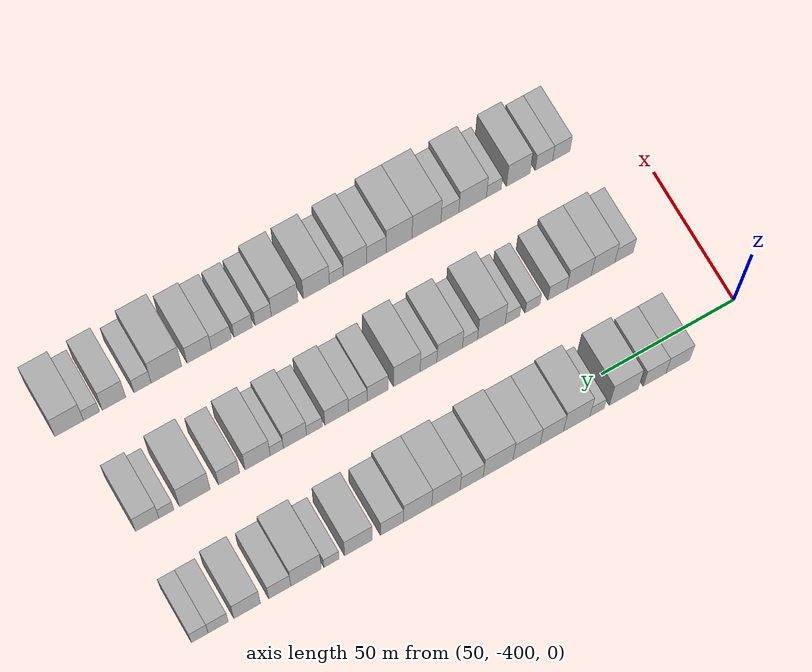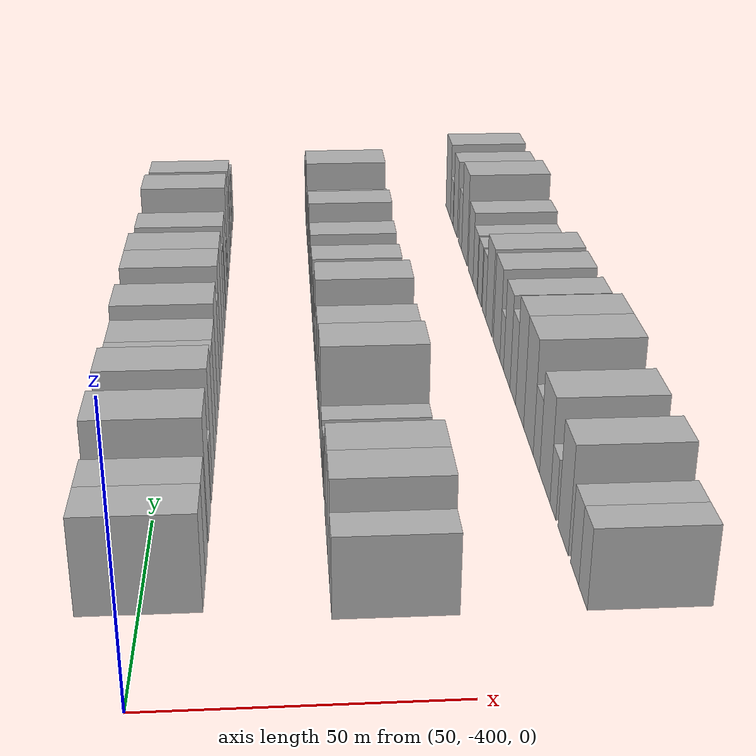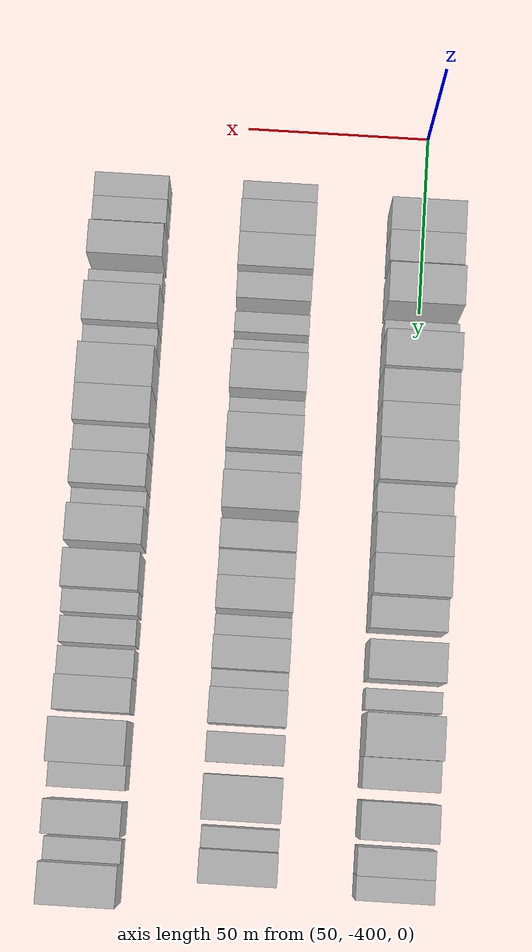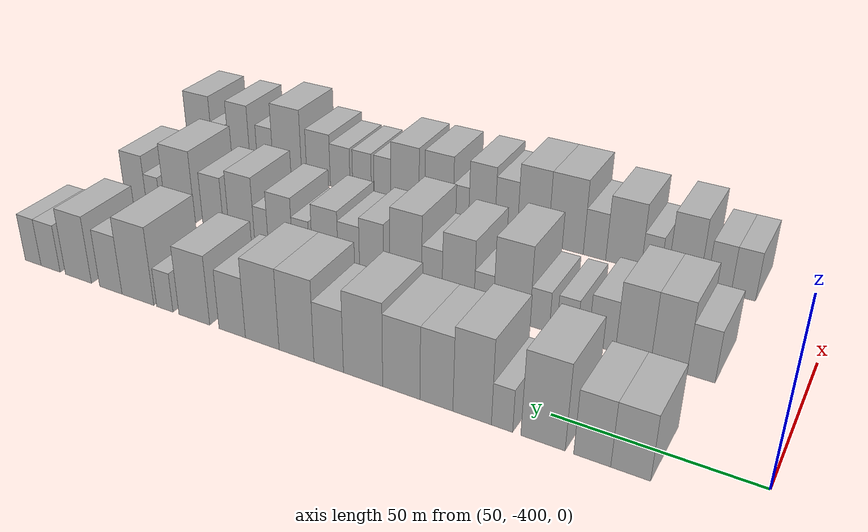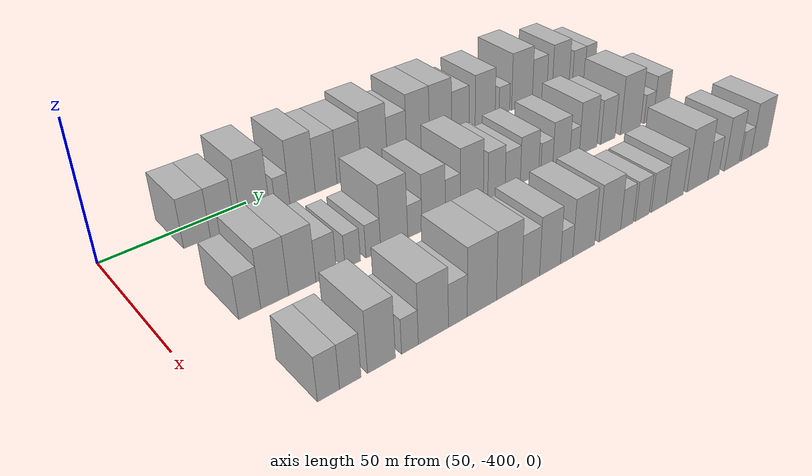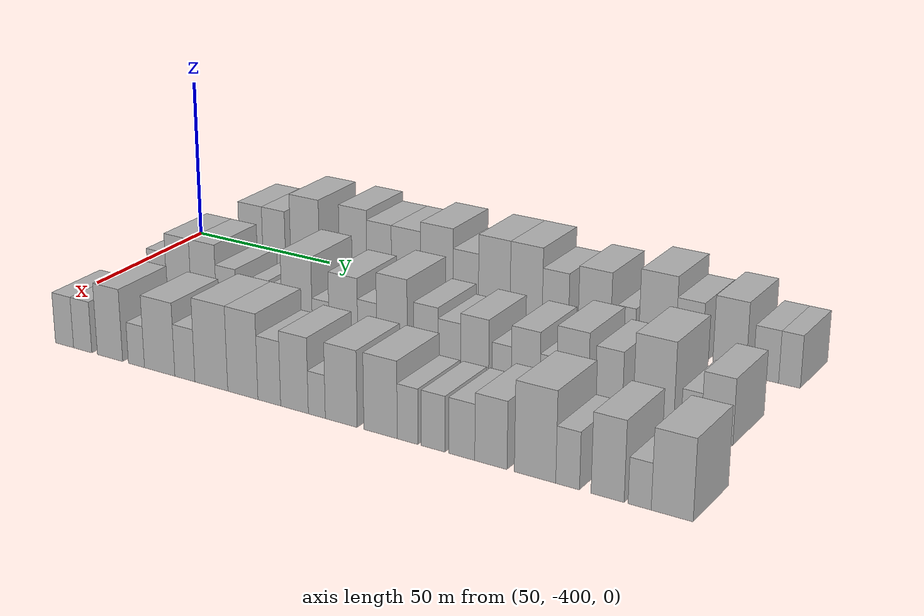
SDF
<sdf version="1.6">
 <world name="default">
  <model name="building_1">
   <static>1</static>
   <pose>50.0000 -372.5119 0 0.000000 0.000000 0.000000</pose>
   <link name="link">
    <pose>0 0 9.00 0 0 0</pose>
    <collision name="collision"><geometry><box><size>20.0000 8.9763 18.0000</size></box></geometry></collision>
    <visual name="visual">
     <cast_shadows>0</cast_shadows>
     <geometry><box><size>20.0000 8.9763 18.0000</size></box></geometry>
     <material>
      <script>
       <uri>model://HANNAS_wall/materials/scripts</uri>
       <uri>model://HANNAS_wall/materials/textures</uri>
       <name>vrc/HANNAS_wall</name>
      </script>
     </material>
    </visual>
   </link>
  </model>
  <model name="building_2">
   <static>1</static>
   <pose>50.0000 -363.7410 0 0.000000 0.000000 0.000000</pose>
   <link name="link">
    <pose>0 0 9.00 0 0 0</pose>
    <collision name="collision"><geometry><box><size>20.0000 8.5655 18.0000</size></box></geometry></collision>
    <visual name="visual">
     <cast_shadows>0</cast_shadows>
     <geometry><box><size>20.0000 8.5655 18.0000</size></box></geometry>
     <material>
      <script>
       <uri>model://HANNAS_wall/materials/scripts</uri>
       <uri>model://HANNAS_wall/materials/textures</uri>
       <name>vrc/HANNAS_wall</name>
      </script>
     </material>
    </visual>
   </link>
  </model>
  <model name="building_3">
   <static>1</static>
   <pose>50.0000 -352.1159 0 0.000000 0.000000 0.000000</pose>
   <link name="link">
    <pose>0 0 12.00 0 0 0</pose>
    <collision name="collision"><geometry><box><size>20.0000 10.6847 24.0000</size></box></geometry></collision>
    <visual name="visual">
     <cast_shadows>0</cast_shadows>
     <geometry><box><size>20.0000 10.6847 24.0000</size></box></geometry>
     <material>
      <script>
       <uri>model://HANNAS_wall/materials/scripts</uri>
       <uri>model://HANNAS_wall/materials/textures</uri>
       <name>vrc/HANNAS_wall</name>
      </script>
     </material>
    </visual>
   </link>
  </model>
  <model name="building_4">
   <static>1</static>
   <pose>50.0000 -342.1169 0 0.000000 0.000000 0.000000</pose>
   <link name="link">
    <pose>0 0 6.00 0 0 0</pose>
    <collision name="collision"><geometry><box><size>20.0000 5.3132 12.0000</size></box></geometry></collision>
    <visual name="visual">
     <cast_shadows>0</cast_shadows>
     <geometry><box><size>20.0000 5.3132 12.0000</size></box></geometry>
     <material>
      <script>
       <uri>model://HANNAS_wall/materials/scripts</uri>
       <uri>model://HANNAS_wall/materials/textures</uri>
       <name>vrc/HANNAS_wall</name>
      </script>
     </material>
    </visual>
   </link>
  </model>
  <model name="building_5">
   <static>1</static>
   <pose>50.0000 -334.5347 0 0.000000 0.000000 0.000000</pose>
   <link name="link">
    <pose>0 0 12.00 0 0 0</pose>
    <collision name="collision"><geometry><box><size>20.0000 9.8513 24.0000</size></box></geometry></collision>
    <visual name="visual">
     <cast_shadows>0</cast_shadows>
     <geometry><box><size>20.0000 9.8513 24.0000</size></box></geometry>
     <material>
      <script>
       <uri>model://HANNAS_wall/materials/scripts</uri>
       <uri>model://HANNAS_wall/materials/textures</uri>
       <name>vrc/HANNAS_wall</name>
      </script>
     </material>
    </visual>
   </link>
  </model>
  <model name="building_6">
   <static>1</static>
   <pose>50.0000 -325.2550 0 0.000000 0.000000 0.000000</pose>
   <link name="link">
    <pose>0 0 10.50 0 0 0</pose>
    <collision name="collision"><geometry><box><size>20.0000 8.7081 21.0000</size></box></geometry></collision>
    <visual name="visual">
     <cast_shadows>0</cast_shadows>
     <geometry><box><size>20.0000 8.7081 21.0000</size></box></geometry>
     <material>
      <script>
       <uri>model://HANNAS_wall/materials/scripts</uri>
       <uri>model://HANNAS_wall/materials/textures</uri>
       <name>vrc/HANNAS_wall</name>
      </script>
     </material>
    </visual>
   </link>
  </model>
  <model name="building_7">
   <static>1</static>
   <pose>50.0000 -315.8533 0 0.000000 0.000000 0.000000</pose>
   <link name="link">
    <pose>0 0 10.50 0 0 0</pose>
    <collision name="collision"><geometry><box><size>20.0000 10.0951 21.0000</size></box></geometry></collision>
    <visual name="visual">
     <cast_shadows>0</cast_shadows>
     <geometry><box><size>20.0000 10.0951 21.0000</size></box></geometry>
     <material>
      <script>
       <uri>model://HANNAS_wall/materials/scripts</uri>
       <uri>model://HANNAS_wall/materials/textures</uri>
       <name>vrc/HANNAS_wall</name>
      </script>
     </material>
    </visual>
   </link>
  </model>
  <model name="building_8">
   <static>1</static>
   <pose>50.0000 -305.2932 0 0.000000 0.000000 0.000000</pose>
   <link name="link">
    <pose>0 0 12.00 0 0 0</pose>
    <collision name="collision"><geometry><box><size>20.0000 11.0251 24.0000</size></box></geometry></collision>
    <visual name="visual">
     <cast_shadows>0</cast_shadows>
     <geometry><box><size>20.0000 11.0251 24.0000</size></box></geometry>
     <material>
      <script>
       <uri>model://HANNAS_wall/materials/scripts</uri>
       <uri>model://HANNAS_wall/materials/textures</uri>
       <name>vrc/HANNAS_wall</name>
      </script>
     </material>
    </visual>
   </link>
  </model>
  <model name="building_9">
   <static>1</static>
   <pose>50.0000 -295.5040 0 0.000000 0.000000 0.000000</pose>
   <link name="link">
    <pose>0 0 9.00 0 0 0</pose>
    <collision name="collision"><geometry><box><size>20.0000 8.5534 18.0000</size></box></geometry></collision>
    <visual name="visual">
     <cast_shadows>0</cast_shadows>
     <geometry><box><size>20.0000 8.5534 18.0000</size></box></geometry>
     <material>
      <script>
       <uri>model://HANNAS_wall/materials/scripts</uri>
       <uri>model://HANNAS_wall/materials/textures</uri>
       <name>vrc/HANNAS_wall</name>
      </script>
     </material>
    </visual>
   </link>
  </model>
  <model name="building_10">
   <static>1</static>
   <pose>50.0000 -286.0187 0 0.000000 0.000000 0.000000</pose>
   <link name="link">
    <pose>0 0 12.00 0 0 0</pose>
    <collision name="collision"><geometry><box><size>20.0000 10.4171 24.0000</size></box></geometry></collision>
    <visual name="visual">
     <cast_shadows>0</cast_shadows>
     <geometry><box><size>20.0000 10.4171 24.0000</size></box></geometry>
     <material>
      <script>
       <uri>model://HANNAS_wall/materials/scripts</uri>
       <uri>model://HANNAS_wall/materials/textures</uri>
       <name>vrc/HANNAS_wall</name>
      </script>
     </material>
    </visual>
   </link>
  </model>
  <model name="building_11">
   <static>1</static>
   <pose>50.0000 -275.6110 0 0.000000 0.000000 0.000000</pose>
   <link name="link">
    <pose>0 0 12.00 0 0 0</pose>
    <collision name="collision"><geometry><box><size>20.0000 10.3982 24.0000</size></box></geometry></collision>
    <visual name="visual">
     <cast_shadows>0</cast_shadows>
     <geometry><box><size>20.0000 10.3982 24.0000</size></box></geometry>
     <material>
      <script>
       <uri>model://HANNAS_wall/materials/scripts</uri>
       <uri>model://HANNAS_wall/materials/textures</uri>
       <name>vrc/HANNAS_wall</name>
      </script>
     </material>
    </visual>
   </link>
  </model>
  <model name="building_12">
   <static>1</static>
   <pose>50.0000 -266.2202 0 0.000000 0.000000 0.000000</pose>
   <link name="link">
    <pose>0 0 9.00 0 0 0</pose>
    <collision name="collision"><geometry><box><size>20.0000 8.3834 18.0000</size></box></geometry></collision>
    <visual name="visual">
     <cast_shadows>0</cast_shadows>
     <geometry><box><size>20.0000 8.3834 18.0000</size></box></geometry>
     <material>
      <script>
       <uri>model://HANNAS_wall/materials/scripts</uri>
       <uri>model://HANNAS_wall/materials/textures</uri>
       <name>vrc/HANNAS_wall</name>
      </script>
     </material>
    </visual>
   </link>
  </model>
  <model name="building_13">
   <static>1</static>
   <pose>50.0000 -253.9671 0 0.000000 0.000000 0.000000</pose>
   <link name="link">
    <pose>0 0 10.50 0 0 0</pose>
    <collision name="collision"><geometry><box><size>20.0000 10.1227 21.0000</size></box></geometry></collision>
    <visual name="visual">
     <cast_shadows>0</cast_shadows>
     <geometry><box><size>20.0000 10.1227 21.0000</size></box></geometry>
     <material>
      <script>
       <uri>model://HANNAS_wall/materials/scripts</uri>
       <uri>model://HANNAS_wall/materials/textures</uri>
       <name>vrc/HANNAS_wall</name>
      </script>
     </material>
    </visual>
   </link>
  </model>
  <model name="building_14">
   <static>1</static>
   <pose>50.0000 -244.1444 0 0.000000 0.000000 0.000000</pose>
   <link name="link">
    <pose>0 0 6.00 0 0 0</pose>
    <collision name="collision"><geometry><box><size>20.0000 5.5228 12.0000</size></box></geometry></collision>
    <visual name="visual">
     <cast_shadows>0</cast_shadows>
     <geometry><box><size>20.0000 5.5228 12.0000</size></box></geometry>
     <material>
      <script>
       <uri>model://HANNAS_wall/materials/scripts</uri>
       <uri>model://HANNAS_wall/materials/textures</uri>
       <name>vrc/HANNAS_wall</name>
      </script>
     </material>
    </visual>
   </link>
  </model>
  <model name="building_15">
   <static>1</static>
   <pose>50.0000 -234.8598 0 0.000000 0.000000 0.000000</pose>
   <link name="link">
    <pose>0 0 12.00 0 0 0</pose>
    <collision name="collision"><geometry><box><size>20.0000 11.0464 24.0000</size></box></geometry></collision>
    <visual name="visual">
     <cast_shadows>0</cast_shadows>
     <geometry><box><size>20.0000 11.0464 24.0000</size></box></geometry>
     <material>
      <script>
       <uri>model://HANNAS_wall/materials/scripts</uri>
       <uri>model://HANNAS_wall/materials/textures</uri>
       <name>vrc/HANNAS_wall</name>
      </script>
     </material>
    </visual>
   </link>
  </model>
  <model name="building_16">
   <static>1</static>
   <pose>50.0000 -225.3460 0 0.000000 0.000000 0.000000</pose>
   <link name="link">
    <pose>0 0 9.00 0 0 0</pose>
    <collision name="collision"><geometry><box><size>20.0000 7.9812 18.0000</size></box></geometry></collision>
    <visual name="visual">
     <cast_shadows>0</cast_shadows>
     <geometry><box><size>20.0000 7.9812 18.0000</size></box></geometry>
     <material>
      <script>
       <uri>model://HANNAS_wall/materials/scripts</uri>
       <uri>model://HANNAS_wall/materials/textures</uri>
       <name>vrc/HANNAS_wall</name>
      </script>
     </material>
    </visual>
   </link>
  </model>
  <model name="building_17">
   <static>1</static>
   <pose>50.0000 -213.5502 0 0.000000 0.000000 0.000000</pose>
   <link name="link">
    <pose>0 0 10.50 0 0 0</pose>
    <collision name="collision"><geometry><box><size>20.0000 9.6105 21.0000</size></box></geometry></collision>
    <visual name="visual">
     <cast_shadows>0</cast_shadows>
     <geometry><box><size>20.0000 9.6105 21.0000</size></box></geometry>
     <material>
      <script>
       <uri>model://HANNAS_wall/materials/scripts</uri>
       <uri>model://HANNAS_wall/materials/textures</uri>
       <name>vrc/HANNAS_wall</name>
      </script>
     </material>
    </visual>
   </link>
  </model>
  <model name="building_18">
   <static>1</static>
   <pose>50.0000 -203.1293 0 0.000000 0.000000 0.000000</pose>
   <link name="link">
    <pose>0 0 7.50 0 0 0</pose>
    <collision name="collision"><geometry><box><size>20.0000 7.2313 15.0000</size></box></geometry></collision>
    <visual name="visual">
     <cast_shadows>0</cast_shadows>
     <geometry><box><size>20.0000 7.2313 15.0000</size></box></geometry>
     <material>
      <script>
       <uri>model://HANNAS_wall/materials/scripts</uri>
       <uri>model://HANNAS_wall/materials/textures</uri>
       <name>vrc/HANNAS_wall</name>
      </script>
     </material>
    </visual>
   </link>
  </model>
  <model name="building_19">
   <static>1</static>
   <pose>50.0000 -196.4776 0 0.000000 0.000000 0.000000</pose>
   <link name="link">
    <pose>0 0 7.50 0 0 0</pose>
    <collision name="collision"><geometry><box><size>20.0000 6.0720 15.0000</size></box></geometry></collision>
    <visual name="visual">
     <cast_shadows>0</cast_shadows>
     <geometry><box><size>20.0000 6.0720 15.0000</size></box></geometry>
     <material>
      <script>
       <uri>model://HANNAS_wall/materials/scripts</uri>
       <uri>model://HANNAS_wall/materials/textures</uri>
       <name>vrc/HANNAS_wall</name>
      </script>
     </material>
    </visual>
   </link>
  </model>
  <model name="building_85">
   <static>1</static>
   <pose>90.0000 -376.5354 0 0.000000 0.000000 0.000000</pose>
   <link name="link">
    <pose>0 0 7.50 0 0 0</pose>
    <collision name="collision"><geometry><box><size>20.0000 6.9292 15.0000</size></box></geometry></collision>
    <visual name="visual">
     <cast_shadows>0</cast_shadows>
     <geometry><box><size>20.0000 6.9292 15.0000</size></box></geometry>
     <material>
      <script>
       <uri>model://HANNAS_wall/materials/scripts</uri>
       <uri>model://HANNAS_wall/materials/textures</uri>
       <name>vrc/HANNAS_wall</name>
      </script>
     </material>
    </visual>
   </link>
  </model>
  <model name="building_86">
   <static>1</static>
   <pose>90.0000 -368.5612 0 0.000000 0.000000 0.000000</pose>
   <link name="link">
    <pose>0 0 10.50 0 0 0</pose>
    <collision name="collision"><geometry><box><size>20.0000 9.0191 21.0000</size></box></geometry></collision>
    <visual name="visual">
     <cast_shadows>0</cast_shadows>
     <geometry><box><size>20.0000 9.0191 21.0000</size></box></geometry>
     <material>
      <script>
       <uri>model://HANNAS_wall/materials/scripts</uri>
       <uri>model://HANNAS_wall/materials/textures</uri>
       <name>vrc/HANNAS_wall</name>
      </script>
     </material>
    </visual>
   </link>
  </model>
  <model name="building_87">
   <static>1</static>
   <pose>90.0000 -359.4609 0 0.000000 0.000000 0.000000</pose>
   <link name="link">
    <pose>0 0 10.50 0 0 0</pose>
    <collision name="collision"><geometry><box><size>20.0000 9.1815 21.0000</size></box></geometry></collision>
    <visual name="visual">
     <cast_shadows>0</cast_shadows>
     <geometry><box><size>20.0000 9.1815 21.0000</size></box></geometry>
     <material>
      <script>
       <uri>model://HANNAS_wall/materials/scripts</uri>
       <uri>model://HANNAS_wall/materials/textures</uri>
       <name>vrc/HANNAS_wall</name>
      </script>
     </material>
    </visual>
   </link>
  </model>
  <model name="building_88">
   <static>1</static>
   <pose>90.0000 -351.2825 0 0.000000 0.000000 0.000000</pose>
   <link name="link">
    <pose>0 0 7.50 0 0 0</pose>
    <collision name="collision"><geometry><box><size>20.0000 7.1753 15.0000</size></box></geometry></collision>
    <visual name="visual">
     <cast_shadows>0</cast_shadows>
     <geometry><box><size>20.0000 7.1753 15.0000</size></box></geometry>
     <material>
      <script>
       <uri>model://HANNAS_wall/materials/scripts</uri>
       <uri>model://HANNAS_wall/materials/textures</uri>
       <name>vrc/HANNAS_wall</name>
      </script>
     </material>
    </visual>
   </link>
  </model>
  <model name="building_89">
   <static>1</static>
   <pose>90.0000 -341.9021 0 0.000000 0.000000 0.000000</pose>
   <link name="link">
    <pose>0 0 6.00 0 0 0</pose>
    <collision name="collision"><geometry><box><size>20.0000 5.5855 12.0000</size></box></geometry></collision>
    <visual name="visual">
     <cast_shadows>0</cast_shadows>
     <geometry><box><size>20.0000 5.5855 12.0000</size></box></geometry>
     <material>
      <script>
       <uri>model://HANNAS_wall/materials/scripts</uri>
       <uri>model://HANNAS_wall/materials/textures</uri>
       <name>vrc/HANNAS_wall</name>
      </script>
     </material>
    </visual>
   </link>
  </model>
  <model name="building_90">
   <static>1</static>
   <pose>90.0000 -334.3549 0 0.000000 0.000000 0.000000</pose>
   <link name="link">
    <pose>0 0 6.00 0 0 0</pose>
    <collision name="collision"><geometry><box><size>20.0000 5.5089 12.0000</size></box></geometry></collision>
    <visual name="visual">
     <cast_shadows>0</cast_shadows>
     <geometry><box><size>20.0000 5.5089 12.0000</size></box></geometry>
     <material>
      <script>
       <uri>model://HANNAS_wall/materials/scripts</uri>
       <uri>model://HANNAS_wall/materials/textures</uri>
       <name>vrc/HANNAS_wall</name>
      </script>
     </material>
    </visual>
   </link>
  </model>
  <model name="building_91">
   <static>1</static>
   <pose>90.0000 -326.4259 0 0.000000 0.000000 0.000000</pose>
   <link name="link">
    <pose>0 0 12.00 0 0 0</pose>
    <collision name="collision"><geometry><box><size>20.0000 10.3491 24.0000</size></box></geometry></collision>
    <visual name="visual">
     <cast_shadows>0</cast_shadows>
     <geometry><box><size>20.0000 10.3491 24.0000</size></box></geometry>
     <material>
      <script>
       <uri>model://HANNAS_wall/materials/scripts</uri>
       <uri>model://HANNAS_wall/materials/textures</uri>
       <name>vrc/HANNAS_wall</name>
      </script>
     </material>
    </visual>
   </link>
  </model>
  <model name="building_92">
   <static>1</static>
   <pose>90.0000 -318.4289 0 0.000000 0.000000 0.000000</pose>
   <link name="link">
    <pose>0 0 6.00 0 0 0</pose>
    <collision name="collision"><geometry><box><size>20.0000 5.6448 12.0000</size></box></geometry></collision>
    <visual name="visual">
     <cast_shadows>0</cast_shadows>
     <geometry><box><size>20.0000 5.6448 12.0000</size></box></geometry>
     <material>
      <script>
       <uri>model://HANNAS_wall/materials/scripts</uri>
       <uri>model://HANNAS_wall/materials/textures</uri>
       <name>vrc/HANNAS_wall</name>
      </script>
     </material>
    </visual>
   </link>
  </model>
  <model name="building_93">
   <static>1</static>
   <pose>90.0000 -310.8419 0 0.000000 0.000000 0.000000</pose>
   <link name="link">
    <pose>0 0 10.50 0 0 0</pose>
    <collision name="collision"><geometry><box><size>20.0000 9.5293 21.0000</size></box></geometry></collision>
    <visual name="visual">
     <cast_shadows>0</cast_shadows>
     <geometry><box><size>20.0000 9.5293 21.0000</size></box></geometry>
     <material>
      <script>
       <uri>model://HANNAS_wall/materials/scripts</uri>
       <uri>model://HANNAS_wall/materials/textures</uri>
       <name>vrc/HANNAS_wall</name>
      </script>
     </material>
    </visual>
   </link>
  </model>
  <model name="building_94">
   <static>1</static>
   <pose>90.0000 -302.9667 0 0.000000 0.000000 0.000000</pose>
   <link name="link">
    <pose>0 0 7.50 0 0 0</pose>
    <collision name="collision"><geometry><box><size>20.0000 6.2211 15.0000</size></box></geometry></collision>
    <visual name="visual">
     <cast_shadows>0</cast_shadows>
     <geometry><box><size>20.0000 6.2211 15.0000</size></box></geometry>
     <material>
      <script>
       <uri>model://HANNAS_wall/materials/scripts</uri>
       <uri>model://HANNAS_wall/materials/textures</uri>
       <name>vrc/HANNAS_wall</name>
      </script>
     </material>
    </visual>
   </link>
  </model>
  <model name="building_95">
   <static>1</static>
   <pose>90.0000 -294.9376 0 0.000000 0.000000 0.000000</pose>
   <link name="link">
    <pose>0 0 12.00 0 0 0</pose>
    <collision name="collision"><geometry><box><size>20.0000 9.8371 24.0000</size></box></geometry></collision>
    <visual name="visual">
     <cast_shadows>0</cast_shadows>
     <geometry><box><size>20.0000 9.8371 24.0000</size></box></geometry>
     <material>
      <script>
       <uri>model://HANNAS_wall/materials/scripts</uri>
       <uri>model://HANNAS_wall/materials/textures</uri>
       <name>vrc/HANNAS_wall</name>
      </script>
     </material>
    </visual>
   </link>
  </model>
  <model name="building_96">
   <static>1</static>
   <pose>90.0000 -284.1683 0 0.000000 0.000000 0.000000</pose>
   <link name="link">
    <pose>0 0 9.00 0 0 0</pose>
    <collision name="collision"><geometry><box><size>20.0000 7.7015 18.0000</size></box></geometry></collision>
    <visual name="visual">
     <cast_shadows>0</cast_shadows>
     <geometry><box><size>20.0000 7.7015 18.0000</size></box></geometry>
     <material>
      <script>
       <uri>model://HANNAS_wall/materials/scripts</uri>
       <uri>model://HANNAS_wall/materials/textures</uri>
       <name>vrc/HANNAS_wall</name>
      </script>
     </material>
    </visual>
   </link>
  </model>
  <model name="building_97">
   <static>1</static>
   <pose>90.0000 -276.8139 0 0.000000 0.000000 0.000000</pose>
   <link name="link">
    <pose>0 0 7.50 0 0 0</pose>
    <collision name="collision"><geometry><box><size>20.0000 7.0073 15.0000</size></box></geometry></collision>
    <visual name="visual">
     <cast_shadows>0</cast_shadows>
     <geometry><box><size>20.0000 7.0073 15.0000</size></box></geometry>
     <material>
      <script>
       <uri>model://HANNAS_wall/materials/scripts</uri>
       <uri>model://HANNAS_wall/materials/textures</uri>
       <name>vrc/HANNAS_wall</name>
      </script>
     </material>
    </visual>
   </link>
  </model>
  <model name="building_98">
   <static>1</static>
   <pose>90.0000 -268.9836 0 0.000000 0.000000 0.000000</pose>
   <link name="link">
    <pose>0 0 9.00 0 0 0</pose>
    <collision name="collision"><geometry><box><size>20.0000 8.6532 18.0000</size></box></geometry></collision>
    <visual name="visual">
     <cast_shadows>0</cast_shadows>
     <geometry><box><size>20.0000 8.6532 18.0000</size></box></geometry>
     <material>
      <script>
       <uri>model://HANNAS_wall/materials/scripts</uri>
       <uri>model://HANNAS_wall/materials/textures</uri>
       <name>vrc/HANNAS_wall</name>
      </script>
     </material>
    </visual>
   </link>
  </model>
  <model name="building_99">
   <static>1</static>
   <pose>90.0000 -260.7581 0 0.000000 0.000000 0.000000</pose>
   <link name="link">
    <pose>0 0 6.00 0 0 0</pose>
    <collision name="collision"><geometry><box><size>20.0000 5.7977 12.0000</size></box></geometry></collision>
    <visual name="visual">
     <cast_shadows>0</cast_shadows>
     <geometry><box><size>20.0000 5.7977 12.0000</size></box></geometry>
     <material>
      <script>
       <uri>model://HANNAS_wall/materials/scripts</uri>
       <uri>model://HANNAS_wall/materials/textures</uri>
       <name>vrc/HANNAS_wall</name>
      </script>
     </material>
    </visual>
   </link>
  </model>
  <model name="building_100">
   <static>1</static>
   <pose>90.0000 -253.6061 0 0.000000 0.000000 0.000000</pose>
   <link name="link">
    <pose>0 0 9.00 0 0 0</pose>
    <collision name="collision"><geometry><box><size>20.0000 8.5063 18.0000</size></box></geometry></collision>
    <visual name="visual">
     <cast_shadows>0</cast_shadows>
     <geometry><box><size>20.0000 8.5063 18.0000</size></box></geometry>
     <material>
      <script>
       <uri>model://HANNAS_wall/materials/scripts</uri>
       <uri>model://HANNAS_wall/materials/textures</uri>
       <name>vrc/HANNAS_wall</name>
      </script>
     </material>
    </visual>
   </link>
  </model>
  <model name="building_101">
   <static>1</static>
   <pose>90.0000 -246.9345 0 0.000000 0.000000 0.000000</pose>
   <link name="link">
    <pose>0 0 6.00 0 0 0</pose>
    <collision name="collision"><geometry><box><size>20.0000 4.8370 12.0000</size></box></geometry></collision>
    <visual name="visual">
     <cast_shadows>0</cast_shadows>
     <geometry><box><size>20.0000 4.8370 12.0000</size></box></geometry>
     <material>
      <script>
       <uri>model://HANNAS_wall/materials/scripts</uri>
       <uri>model://HANNAS_wall/materials/textures</uri>
       <name>vrc/HANNAS_wall</name>
      </script>
     </material>
    </visual>
   </link>
  </model>
  <model name="building_102">
   <static>1</static>
   <pose>90.0000 -239.9209 0 0.000000 0.000000 0.000000</pose>
   <link name="link">
    <pose>0 0 10.50 0 0 0</pose>
    <collision name="collision"><geometry><box><size>20.0000 9.1901 21.0000</size></box></geometry></collision>
    <visual name="visual">
     <cast_shadows>0</cast_shadows>
     <geometry><box><size>20.0000 9.1901 21.0000</size></box></geometry>
     <material>
      <script>
       <uri>model://HANNAS_wall/materials/scripts</uri>
       <uri>model://HANNAS_wall/materials/textures</uri>
       <name>vrc/HANNAS_wall</name>
      </script>
     </material>
    </visual>
   </link>
  </model>
  <model name="building_103">
   <static>1</static>
   <pose>90.0000 -229.4574 0 0.000000 0.000000 0.000000</pose>
   <link name="link">
    <pose>0 0 9.00 0 0 0</pose>
    <collision name="collision"><geometry><box><size>20.0000 7.7369 18.0000</size></box></geometry></collision>
    <visual name="visual">
     <cast_shadows>0</cast_shadows>
     <geometry><box><size>20.0000 7.7369 18.0000</size></box></geometry>
     <material>
      <script>
       <uri>model://HANNAS_wall/materials/scripts</uri>
       <uri>model://HANNAS_wall/materials/textures</uri>
       <name>vrc/HANNAS_wall</name>
      </script>
     </material>
    </visual>
   </link>
  </model>
  <model name="building_104">
   <static>1</static>
   <pose>90.0000 -216.9797 0 0.000000 0.000000 0.000000</pose>
   <link name="link">
    <pose>0 0 12.00 0 0 0</pose>
    <collision name="collision"><geometry><box><size>20.0000 11.2185 24.0000</size></box></geometry></collision>
    <visual name="visual">
     <cast_shadows>0</cast_shadows>
     <geometry><box><size>20.0000 11.2185 24.0000</size></box></geometry>
     <material>
      <script>
       <uri>model://HANNAS_wall/materials/scripts</uri>
       <uri>model://HANNAS_wall/materials/textures</uri>
       <name>vrc/HANNAS_wall</name>
      </script>
     </material>
    </visual>
   </link>
  </model>
  <model name="building_105">
   <static>1</static>
   <pose>90.0000 -206.6452 0 0.000000 0.000000 0.000000</pose>
   <link name="link">
    <pose>0 0 6.00 0 0 0</pose>
    <collision name="collision"><geometry><box><size>20.0000 5.4505 12.0000</size></box></geometry></collision>
    <visual name="visual">
     <cast_shadows>0</cast_shadows>
     <geometry><box><size>20.0000 5.4505 12.0000</size></box></geometry>
     <material>
      <script>
       <uri>model://HANNAS_wall/materials/scripts</uri>
       <uri>model://HANNAS_wall/materials/textures</uri>
       <name>vrc/HANNAS_wall</name>
      </script>
     </material>
    </visual>
   </link>
  </model>
  <model name="building_106">
   <static>1</static>
   <pose>90.0000 -199.6742 0 0.000000 0.000000 0.000000</pose>
   <link name="link">
    <pose>0 0 9.00 0 0 0</pose>
    <collision name="collision"><geometry><box><size>20.0000 8.4915 18.0000</size></box></geometry></collision>
    <visual name="visual">
     <cast_shadows>0</cast_shadows>
     <geometry><box><size>20.0000 8.4915 18.0000</size></box></geometry>
     <material>
      <script>
       <uri>model://HANNAS_wall/materials/scripts</uri>
       <uri>model://HANNAS_wall/materials/textures</uri>
       <name>vrc/HANNAS_wall</name>
      </script>
     </material>
    </visual>
   </link>
  </model>
  <model name="building_169">
   <static>1</static>
   <pose>130.0000 -376.7007 0 0.000000 0.000000 0.000000</pose>
   <link name="link">
    <pose>0 0 7.50 0 0 0</pose>
    <collision name="collision"><geometry><box><size>20.0000 6.5987 15.0000</size></box></geometry></collision>
    <visual name="visual">
     <cast_shadows>0</cast_shadows>
     <geometry><box><size>20.0000 6.5987 15.0000</size></box></geometry>
     <material>
      <script>
       <uri>model://HANNAS_wall/materials/scripts</uri>
       <uri>model://HANNAS_wall/materials/textures</uri>
       <name>vrc/HANNAS_wall</name>
      </script>
     </material>
    </visual>
   </link>
  </model>
  <model name="building_170">
   <static>1</static>
   <pose>130.0000 -370.0998 0 0.000000 0.000000 0.000000</pose>
   <link name="link">
    <pose>0 0 7.50 0 0 0</pose>
    <collision name="collision"><geometry><box><size>20.0000 6.6029 15.0000</size></box></geometry></collision>
    <visual name="visual">
     <cast_shadows>0</cast_shadows>
     <geometry><box><size>20.0000 6.6029 15.0000</size></box></geometry>
     <material>
      <script>
       <uri>model://HANNAS_wall/materials/scripts</uri>
       <uri>model://HANNAS_wall/materials/textures</uri>
       <name>vrc/HANNAS_wall</name>
      </script>
     </material>
    </visual>
   </link>
  </model>
  <model name="building_171">
   <static>1</static>
   <pose>130.0000 -360.3156 0 0.000000 0.000000 0.000000</pose>
   <link name="link">
    <pose>0 0 10.50 0 0 0</pose>
    <collision name="collision"><geometry><box><size>20.0000 8.9655 21.0000</size></box></geometry></collision>
    <visual name="visual">
     <cast_shadows>0</cast_shadows>
     <geometry><box><size>20.0000 8.9655 21.0000</size></box></geometry>
     <material>
      <script>
       <uri>model://HANNAS_wall/materials/scripts</uri>
       <uri>model://HANNAS_wall/materials/textures</uri>
       <name>vrc/HANNAS_wall</name>
      </script>
     </material>
    </visual>
   </link>
  </model>
  <model name="building_172">
   <static>1</static>
   <pose>130.0000 -351.0286 0 0.000000 0.000000 0.000000</pose>
   <link name="link">
    <pose>0 0 6.00 0 0 0</pose>
    <collision name="collision"><geometry><box><size>20.0000 5.6085 12.0000</size></box></geometry></collision>
    <visual name="visual">
     <cast_shadows>0</cast_shadows>
     <geometry><box><size>20.0000 5.6085 12.0000</size></box></geometry>
     <material>
      <script>
       <uri>model://HANNAS_wall/materials/scripts</uri>
       <uri>model://HANNAS_wall/materials/textures</uri>
       <name>vrc/HANNAS_wall</name>
      </script>
     </material>
    </visual>
   </link>
  </model>
  <model name="building_173">
   <static>1</static>
   <pose>130.0000 -343.0091 0 0.000000 0.000000 0.000000</pose>
   <link name="link">
    <pose>0 0 10.50 0 0 0</pose>
    <collision name="collision"><geometry><box><size>20.0000 10.4305 21.0000</size></box></geometry></collision>
    <visual name="visual">
     <cast_shadows>0</cast_shadows>
     <geometry><box><size>20.0000 10.4305 21.0000</size></box></geometry>
     <material>
      <script>
       <uri>model://HANNAS_wall/materials/scripts</uri>
       <uri>model://HANNAS_wall/materials/textures</uri>
       <name>vrc/HANNAS_wall</name>
      </script>
     </material>
    </visual>
   </link>
  </model>
  <model name="building_174">
   <static>1</static>
   <pose>130.0000 -334.4058 0 0.000000 0.000000 0.000000</pose>
   <link name="link">
    <pose>0 0 7.50 0 0 0</pose>
    <collision name="collision"><geometry><box><size>20.0000 6.7761 15.0000</size></box></geometry></collision>
    <visual name="visual">
     <cast_shadows>0</cast_shadows>
     <geometry><box><size>20.0000 6.7761 15.0000</size></box></geometry>
     <material>
      <script>
       <uri>model://HANNAS_wall/materials/scripts</uri>
       <uri>model://HANNAS_wall/materials/textures</uri>
       <name>vrc/HANNAS_wall</name>
      </script>
     </material>
    </visual>
   </link>
  </model>
  <model name="building_175">
   <static>1</static>
   <pose>130.0000 -325.5772 0 0.000000 0.000000 0.000000</pose>
   <link name="link">
    <pose>0 0 12.00 0 0 0</pose>
    <collision name="collision"><geometry><box><size>20.0000 10.8812 24.0000</size></box></geometry></collision>
    <visual name="visual">
     <cast_shadows>0</cast_shadows>
     <geometry><box><size>20.0000 10.8812 24.0000</size></box></geometry>
     <material>
      <script>
       <uri>model://HANNAS_wall/materials/scripts</uri>
       <uri>model://HANNAS_wall/materials/textures</uri>
       <name>vrc/HANNAS_wall</name>
      </script>
     </material>
    </visual>
   </link>
  </model>
  <model name="building_176">
   <static>1</static>
   <pose>130.0000 -315.2474 0 0.000000 0.000000 0.000000</pose>
   <link name="link">
    <pose>0 0 12.00 0 0 0</pose>
    <collision name="collision"><geometry><box><size>20.0000 9.7783 24.0000</size></box></geometry></collision>
    <visual name="visual">
     <cast_shadows>0</cast_shadows>
     <geometry><box><size>20.0000 9.7783 24.0000</size></box></geometry>
     <material>
      <script>
       <uri>model://HANNAS_wall/materials/scripts</uri>
       <uri>model://HANNAS_wall/materials/textures</uri>
       <name>vrc/HANNAS_wall</name>
      </script>
     </material>
    </visual>
   </link>
  </model>
  <model name="building_177">
   <static>1</static>
   <pose>130.0000 -306.7326 0 0.000000 0.000000 0.000000</pose>
   <link name="link">
    <pose>0 0 9.00 0 0 0</pose>
    <collision name="collision"><geometry><box><size>20.0000 7.2513 18.0000</size></box></geometry></collision>
    <visual name="visual">
     <cast_shadows>0</cast_shadows>
     <geometry><box><size>20.0000 7.2513 18.0000</size></box></geometry>
     <material>
      <script>
       <uri>model://HANNAS_wall/materials/scripts</uri>
       <uri>model://HANNAS_wall/materials/textures</uri>
       <name>vrc/HANNAS_wall</name>
      </script>
     </material>
    </visual>
   </link>
  </model>
  <model name="building_178">
   <static>1</static>
   <pose>130.0000 -298.7720 0 0.000000 0.000000 0.000000</pose>
   <link name="link">
    <pose>0 0 10.50 0 0 0</pose>
    <collision name="collision"><geometry><box><size>20.0000 8.6699 21.0000</size></box></geometry></collision>
    <visual name="visual">
     <cast_shadows>0</cast_shadows>
     <geometry><box><size>20.0000 8.6699 21.0000</size></box></geometry>
     <material>
      <script>
       <uri>model://HANNAS_wall/materials/scripts</uri>
       <uri>model://HANNAS_wall/materials/textures</uri>
       <name>vrc/HANNAS_wall</name>
      </script>
     </material>
    </visual>
   </link>
  </model>
  <model name="building_179">
   <static>1</static>
   <pose>130.0000 -291.8096 0 0.000000 0.000000 0.000000</pose>
   <link name="link">
    <pose>0 0 6.00 0 0 0</pose>
    <collision name="collision"><geometry><box><size>20.0000 5.2548 12.0000</size></box></geometry></collision>
    <visual name="visual">
     <cast_shadows>0</cast_shadows>
     <geometry><box><size>20.0000 5.2548 12.0000</size></box></geometry>
     <material>
      <script>
       <uri>model://HANNAS_wall/materials/scripts</uri>
       <uri>model://HANNAS_wall/materials/textures</uri>
       <name>vrc/HANNAS_wall</name>
      </script>
     </material>
    </visual>
   </link>
  </model>
  <model name="building_180">
   <static>1</static>
   <pose>130.0000 -284.3282 0 0.000000 0.000000 0.000000</pose>
   <link name="link">
    <pose>0 0 10.50 0 0 0</pose>
    <collision name="collision"><geometry><box><size>20.0000 9.7080 21.0000</size></box></geometry></collision>
    <visual name="visual">
     <cast_shadows>0</cast_shadows>
     <geometry><box><size>20.0000 9.7080 21.0000</size></box></geometry>
     <material>
      <script>
       <uri>model://HANNAS_wall/materials/scripts</uri>
       <uri>model://HANNAS_wall/materials/textures</uri>
       <name>vrc/HANNAS_wall</name>
      </script>
     </material>
    </visual>
   </link>
  </model>
  <model name="building_181">
   <static>1</static>
   <pose>130.0000 -272.5178 0 0.000000 0.000000 0.000000</pose>
   <link name="link">
    <pose>0 0 10.50 0 0 0</pose>
    <collision name="collision"><geometry><box><size>20.0000 9.9128 21.0000</size></box></geometry></collision>
    <visual name="visual">
     <cast_shadows>0</cast_shadows>
     <geometry><box><size>20.0000 9.9128 21.0000</size></box></geometry>
     <material>
      <script>
       <uri>model://HANNAS_wall/materials/scripts</uri>
       <uri>model://HANNAS_wall/materials/textures</uri>
       <name>vrc/HANNAS_wall</name>
      </script>
     </material>
    </visual>
   </link>
  </model>
  <model name="building_182">
   <static>1</static>
   <pose>130.0000 -264.5522 0 0.000000 0.000000 0.000000</pose>
   <link name="link">
    <pose>0 0 7.50 0 0 0</pose>
    <collision name="collision"><geometry><box><size>20.0000 6.0185 15.0000</size></box></geometry></collision>
    <visual name="visual">
     <cast_shadows>0</cast_shadows>
     <geometry><box><size>20.0000 6.0185 15.0000</size></box></geometry>
     <material>
      <script>
       <uri>model://HANNAS_wall/materials/scripts</uri>
       <uri>model://HANNAS_wall/materials/textures</uri>
       <name>vrc/HANNAS_wall</name>
      </script>
     </material>
    </visual>
   </link>
  </model>
  <model name="building_183">
   <static>1</static>
   <pose>130.0000 -257.1374 0 0.000000 0.000000 0.000000</pose>
   <link name="link">
    <pose>0 0 7.50 0 0 0</pose>
    <collision name="collision"><geometry><box><size>20.0000 6.8112 15.0000</size></box></geometry></collision>
    <visual name="visual">
     <cast_shadows>0</cast_shadows>
     <geometry><box><size>20.0000 6.8112 15.0000</size></box></geometry>
     <material>
      <script>
       <uri>model://HANNAS_wall/materials/scripts</uri>
       <uri>model://HANNAS_wall/materials/textures</uri>
       <name>vrc/HANNAS_wall</name>
      </script>
     </material>
    </visual>
   </link>
  </model>
  <model name="building_184">
   <static>1</static>
   <pose>130.0000 -249.0350 0 0.000000 0.000000 0.000000</pose>
   <link name="link">
    <pose>0 0 7.50 0 0 0</pose>
    <collision name="collision"><geometry><box><size>20.0000 7.3935 15.0000</size></box></geometry></collision>
    <visual name="visual">
     <cast_shadows>0</cast_shadows>
     <geometry><box><size>20.0000 7.3935 15.0000</size></box></geometry>
     <material>
      <script>
       <uri>model://HANNAS_wall/materials/scripts</uri>
       <uri>model://HANNAS_wall/materials/textures</uri>
       <name>vrc/HANNAS_wall</name>
      </script>
     </material>
    </visual>
   </link>
  </model>
  <model name="building_185">
   <static>1</static>
   <pose>130.0000 -240.8642 0 0.000000 0.000000 0.000000</pose>
   <link name="link">
    <pose>0 0 9.00 0 0 0</pose>
    <collision name="collision"><geometry><box><size>20.0000 8.9480 18.0000</size></box></geometry></collision>
    <visual name="visual">
     <cast_shadows>0</cast_shadows>
     <geometry><box><size>20.0000 8.9480 18.0000</size></box></geometry>
     <material>
      <script>
       <uri>model://HANNAS_wall/materials/scripts</uri>
       <uri>model://HANNAS_wall/materials/textures</uri>
       <name>vrc/HANNAS_wall</name>
      </script>
     </material>
    </visual>
   </link>
  </model>
  <model name="building_186">
   <static>1</static>
   <pose>130.0000 -228.8006 0 0.000000 0.000000 0.000000</pose>
   <link name="link">
    <pose>0 0 12.00 0 0 0</pose>
    <collision name="collision"><geometry><box><size>20.0000 11.1793 24.0000</size></box></geometry></collision>
    <visual name="visual">
     <cast_shadows>0</cast_shadows>
     <geometry><box><size>20.0000 11.1793 24.0000</size></box></geometry>
     <material>
      <script>
       <uri>model://HANNAS_wall/materials/scripts</uri>
       <uri>model://HANNAS_wall/materials/textures</uri>
       <name>vrc/HANNAS_wall</name>
      </script>
     </material>
    </visual>
   </link>
  </model>
  <model name="building_187">
   <static>1</static>
   <pose>130.0000 -220.0590 0 0.000000 0.000000 0.000000</pose>
   <link name="link">
    <pose>0 0 7.50 0 0 0</pose>
    <collision name="collision"><geometry><box><size>20.0000 6.3041 15.0000</size></box></geometry></collision>
    <visual name="visual">
     <cast_shadows>0</cast_shadows>
     <geometry><box><size>20.0000 6.3041 15.0000</size></box></geometry>
     <material>
      <script>
       <uri>model://HANNAS_wall/materials/scripts</uri>
       <uri>model://HANNAS_wall/materials/textures</uri>
       <name>vrc/HANNAS_wall</name>
      </script>
     </material>
    </visual>
   </link>
  </model>
  <model name="building_188">
   <static>1</static>
   <pose>130.0000 -209.6173 0 0.000000 0.000000 0.000000</pose>
   <link name="link">
    <pose>0 0 10.50 0 0 0</pose>
    <collision name="collision"><geometry><box><size>20.0000 8.5793 21.0000</size></box></geometry></collision>
    <visual name="visual">
     <cast_shadows>0</cast_shadows>
     <geometry><box><size>20.0000 8.5793 21.0000</size></box></geometry>
     <material>
      <script>
       <uri>model://HANNAS_wall/materials/scripts</uri>
       <uri>model://HANNAS_wall/materials/textures</uri>
       <name>vrc/HANNAS_wall</name>
      </script>
     </material>
    </visual>
   </link>
  </model>
  <model name="building_189">
   <static>1</static>
   <pose>130.0000 -201.3903 0 0.000000 0.000000 0.000000</pose>
   <link name="link">
    <pose>0 0 6.00 0 0 0</pose>
    <collision name="collision"><geometry><box><size>20.0000 5.8745 12.0000</size></box></geometry></collision>
    <visual name="visual">
     <cast_shadows>0</cast_shadows>
     <geometry><box><size>20.0000 5.8745 12.0000</size></box></geometry>
     <material>
      <script>
       <uri>model://HANNAS_wall/materials/scripts</uri>
       <uri>model://HANNAS_wall/materials/textures</uri>
       <name>vrc/HANNAS_wall</name>
      </script>
     </material>
    </visual>
   </link>
  </model>
  <model name="building_190">
   <static>1</static>
   <pose>130.0000 -193.2221 0 0.000000 0.000000 0.000000</pose>
   <link name="link">
    <pose>0 0 10.50 0 0 0</pose>
    <collision name="collision"><geometry><box><size>20.0000 10.4620 21.0000</size></box></geometry></collision>
    <visual name="visual">
     <cast_shadows>0</cast_shadows>
     <geometry><box><size>20.0000 10.4620 21.0000</size></box></geometry>
     <material>
      <script>
       <uri>model://HANNAS_wall/materials/scripts</uri>
       <uri>model://HANNAS_wall/materials/textures</uri>
       <name>vrc/HANNAS_wall</name>
      </script>
     </material>
    </visual>
   </link>
  </model>
 </world>
</sdf>
